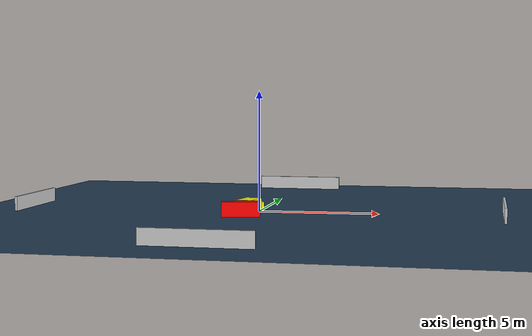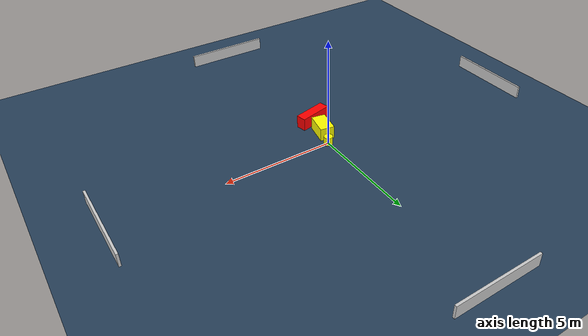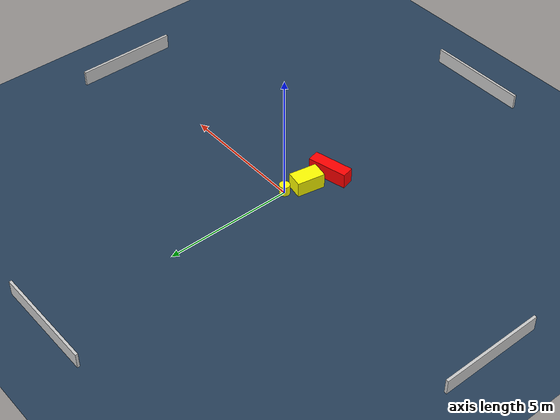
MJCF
<?xml version="1.0" ?>
<mujoco model="generated_environment">
  <option timestep="0.01" integrator="RK4" cone="elliptic"/>
  <default>
    <geom density="1"/>
  </default>
  <asset>
    <texture builtin="gradient" height="3072" name="skybox" rgb1="0.3 0.5 0.7" rgb2="0 0 0" type="skybox" width="512"/>
    <texture builtin="checker" height="300" name="groundplane" rgb1="0.2 0.3 0.4" rgb2="0.1 0.2 0.3" type="2d" width="300"/>
    <material name="groundplane" reflectance="0.2" texrepeat="5 5" texture="groundplane"/>
  </asset>
  <worldbody>
    <light dir="0 0 -1" directional="true" pos="0 0 1.5"/>
    <geom condim="3" friction="0.5 0.005 0.001" material="groundplane" name="floor" pos="0 0 0" size="0 0 0.05" type="plane"/>
    <body name="walls">
      <geom name="wall_1" condim="4" pos="-10.0 0.0 0.3" rgba="0.800000011920929 0.800000011920929 0.800000011920929 1.0" size="0.05 2.0 0.3" type="box"/>
      <geom name="wall_2" condim="4" pos="10.0 0.0 0.3" rgba="0.800000011920929 0.800000011920929 0.800000011920929 1.0" size="0.05 2.0 0.3" type="box"/>
      <geom name="wall_3" condim="4" pos="0.0 -10.0 0.3" rgba="0.800000011920929 0.800000011920929 0.800000011920929 1.0" size="2.0 0.05 0.3" type="box"/>
      <geom name="wall_4" condim="4" pos="0.0 10.0 0.3" rgba="0.800000011920929 0.800000011920929 0.800000011920929 1.0" size="2.0 0.05 0.3" type="box"/>
    </body>
    <body name="robot">
      <joint name="joint_x" type="slide" pos="0 0 0" axis="1 0 0"/>
      <joint name="joint_y" type="slide" pos="0 0 0" axis="0 1 0"/>
      <geom name="robot" type="cylinder" pos="0.0 0.0 0.2" size="0.2 0.2 0.0" mass="5.0" friction="1.0 0.005 0.0001" condim="4" rgba="1.0 1.0 0.0 1.0"/>
    </body>
    <body name="obstacle_1_movable">
      <geom name="obstacle_1_movable" condim="4" pos="-0.2556201394590358 -0.8332811229868222 0.3" euler="0 0 259.3827502467534" friction="0.0 0.005 0.001" rgba="1.0 1.0 0.0 1.0" size="0.5452975658695199 0.32617769943052444 0.3" type="box" mass="0.1"/>
      <joint type="free"/>
    </body>
    <body name="obstacle_2_static">
      <geom name="obstacle_2_static" condim="4" pos="-0.37282053449367697 -1.8537275544003335 0.3" euler="0 0 103.36388808870906" friction="0.0 0.005 0.001" rgba="1.0 0.0 0.0 1.0" size="0.23594724074354778 0.7785461109724381 0.3" type="box"/>
    </body>
  </worldbody>
  <actuator>
    <motor name="actuator_x" joint="joint_x" gear="1" ctrlrange="-1 1"/>
    <motor name="actuator_y" joint="joint_y" gear="1" ctrlrange="-1 1"/>
  </actuator>
</mujoco>
